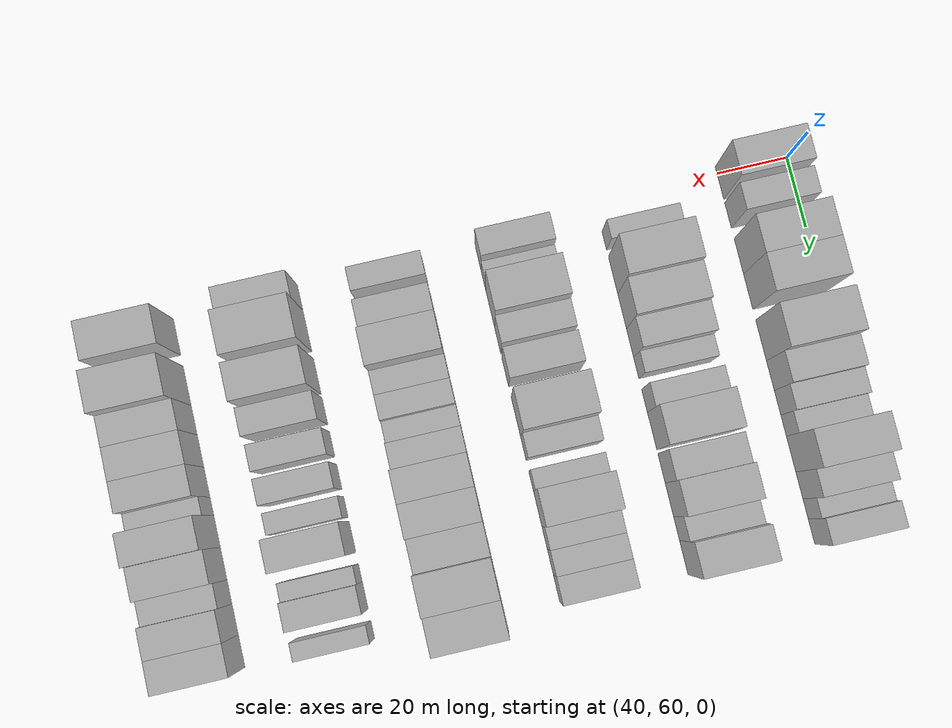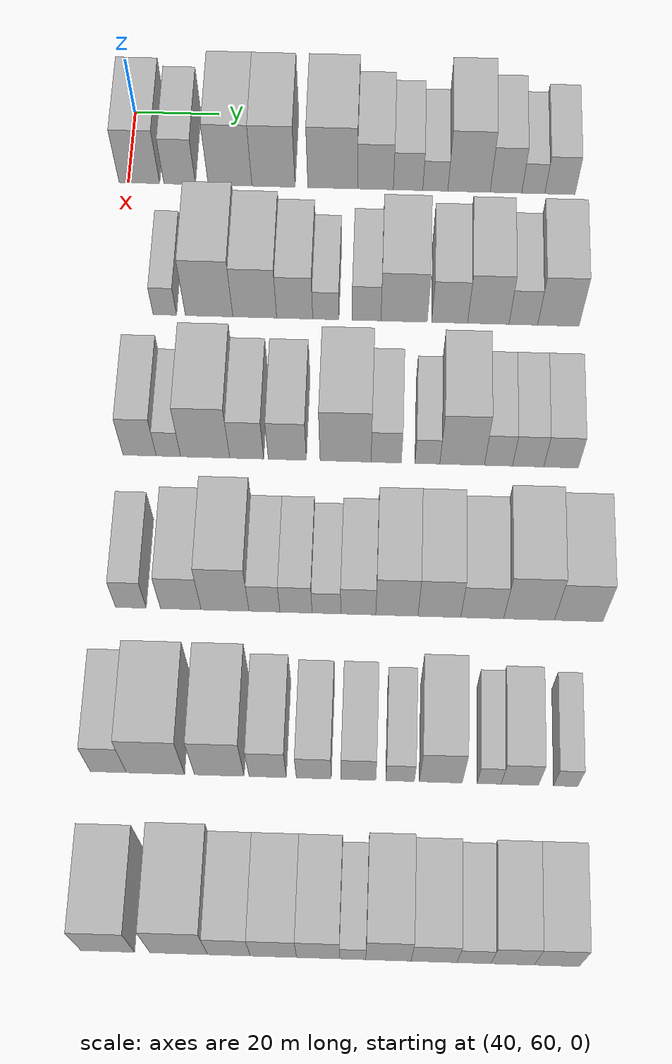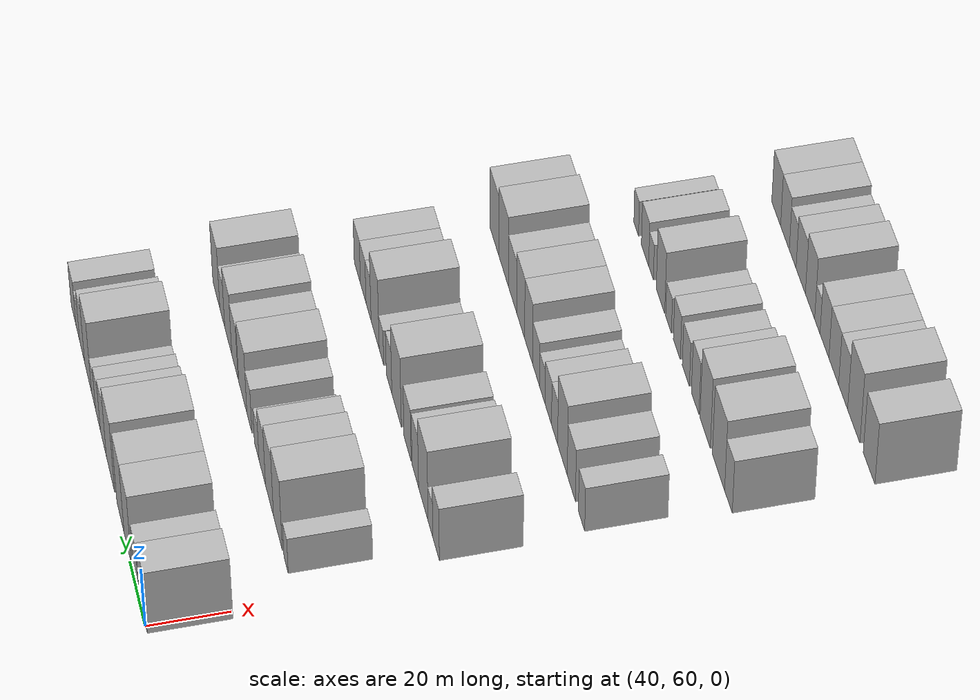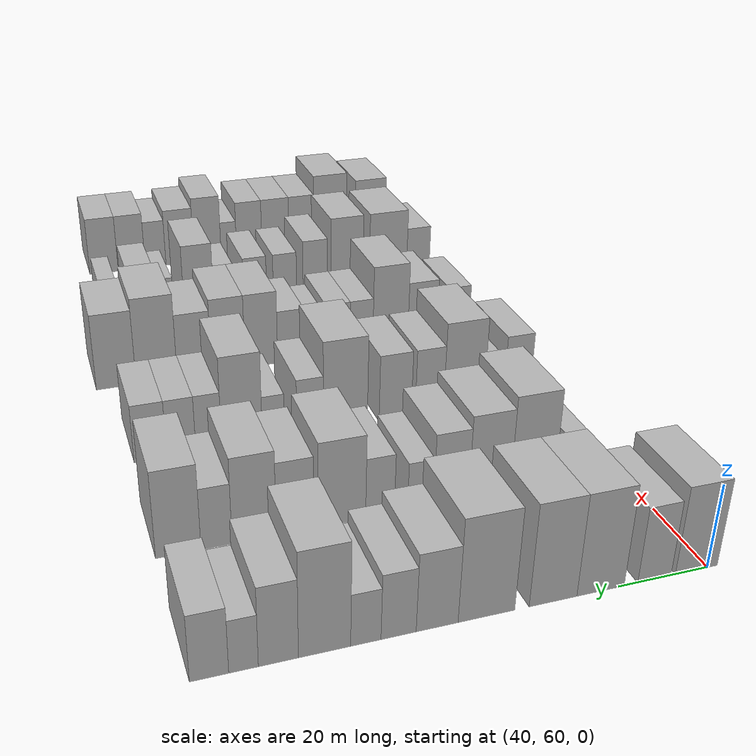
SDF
<sdf version="1.6">
 <world name="default">
  <model name="building_65">
   <static>1</static>
   <pose>50.0000 62.5871 0 0.000000 0.000000 0.000000</pose>
   <link name="link">
    <pose>0 0 10.50 0 0 0</pose>
    <collision name="collision"><geometry><box><size>20.0000 9.5346 21.0000</size></box></geometry></collision>
    <visual name="visual">
     <cast_shadows>0</cast_shadows>
     <geometry><box><size>20.0000 9.5346 21.0000</size></box></geometry>
     <material>
      <script>
       <uri>model://HANNAS_wall/materials/scripts</uri>
       <uri>model://HANNAS_wall/materials/textures</uri>
       <name>vrc/HANNAS_wall</name>
      </script>
     </material>
    </visual>
   </link>
  </model>
  <model name="building_66">
   <static>1</static>
   <pose>50.0000 72.0504 0 0.000000 0.000000 0.000000</pose>
   <link name="link">
    <pose>0 0 9.00 0 0 0</pose>
    <collision name="collision"><geometry><box><size>20.0000 7.3921 18.0000</size></box></geometry></collision>
    <visual name="visual">
     <cast_shadows>0</cast_shadows>
     <geometry><box><size>20.0000 7.3921 18.0000</size></box></geometry>
     <material>
      <script>
       <uri>model://HANNAS_wall/materials/scripts</uri>
       <uri>model://HANNAS_wall/materials/textures</uri>
       <name>vrc/HANNAS_wall</name>
      </script>
     </material>
    </visual>
   </link>
  </model>
  <model name="building_67">
   <static>1</static>
   <pose>50.0000 83.8747 0 0.000000 0.000000 0.000000</pose>
   <link name="link">
    <pose>0 0 12.00 0 0 0</pose>
    <collision name="collision"><geometry><box><size>20.0000 10.2564 24.0000</size></box></geometry></collision>
    <visual name="visual">
     <cast_shadows>0</cast_shadows>
     <geometry><box><size>20.0000 10.2564 24.0000</size></box></geometry>
     <material>
      <script>
       <uri>model://HANNAS_wall/materials/scripts</uri>
       <uri>model://HANNAS_wall/materials/textures</uri>
       <name>vrc/HANNAS_wall</name>
      </script>
     </material>
    </visual>
   </link>
  </model>
  <model name="building_68">
   <static>1</static>
   <pose>50.0000 94.0587 0 0.000000 0.000000 0.000000</pose>
   <link name="link">
    <pose>0 0 12.00 0 0 0</pose>
    <collision name="collision"><geometry><box><size>20.0000 10.1116 24.0000</size></box></geometry></collision>
    <visual name="visual">
     <cast_shadows>0</cast_shadows>
     <geometry><box><size>20.0000 10.1116 24.0000</size></box></geometry>
     <material>
      <script>
       <uri>model://HANNAS_wall/materials/scripts</uri>
       <uri>model://HANNAS_wall/materials/textures</uri>
       <name>vrc/HANNAS_wall</name>
      </script>
     </material>
    </visual>
   </link>
  </model>
  <model name="building_69">
   <static>1</static>
   <pose>50.0000 107.9157 0 0.000000 0.000000 0.000000</pose>
   <link name="link">
    <pose>0 0 12.00 0 0 0</pose>
    <collision name="collision"><geometry><box><size>20.0000 11.6024 24.0000</size></box></geometry></collision>
    <visual name="visual">
     <cast_shadows>0</cast_shadows>
     <geometry><box><size>20.0000 11.6024 24.0000</size></box></geometry>
     <material>
      <script>
       <uri>model://HANNAS_wall/materials/scripts</uri>
       <uri>model://HANNAS_wall/materials/textures</uri>
       <name>vrc/HANNAS_wall</name>
      </script>
     </material>
    </visual>
   </link>
  </model>
  <model name="building_70">
   <static>1</static>
   <pose>50.0000 117.9040 0 0.000000 0.000000 0.000000</pose>
   <link name="link">
    <pose>0 0 9.00 0 0 0</pose>
    <collision name="collision"><geometry><box><size>20.0000 8.3743 18.0000</size></box></geometry></collision>
    <visual name="visual">
     <cast_shadows>0</cast_shadows>
     <geometry><box><size>20.0000 8.3743 18.0000</size></box></geometry>
     <material>
      <script>
       <uri>model://HANNAS_wall/materials/scripts</uri>
       <uri>model://HANNAS_wall/materials/textures</uri>
       <name>vrc/HANNAS_wall</name>
      </script>
     </material>
    </visual>
   </link>
  </model>
  <model name="building_71">
   <static>1</static>
   <pose>50.0000 125.5393 0 0.000000 0.000000 0.000000</pose>
   <link name="link">
    <pose>0 0 7.50 0 0 0</pose>
    <collision name="collision"><geometry><box><size>20.0000 6.8961 15.0000</size></box></geometry></collision>
    <visual name="visual">
     <cast_shadows>0</cast_shadows>
     <geometry><box><size>20.0000 6.8961 15.0000</size></box></geometry>
     <material>
      <script>
       <uri>model://HANNAS_wall/materials/scripts</uri>
       <uri>model://HANNAS_wall/materials/textures</uri>
       <name>vrc/HANNAS_wall</name>
      </script>
     </material>
    </visual>
   </link>
  </model>
  <model name="building_72">
   <static>1</static>
   <pose>50.0000 131.9110 0 0.000000 0.000000 0.000000</pose>
   <link name="link">
    <pose>0 0 6.00 0 0 0</pose>
    <collision name="collision"><geometry><box><size>20.0000 5.8474 12.0000</size></box></geometry></collision>
    <visual name="visual">
     <cast_shadows>0</cast_shadows>
     <geometry><box><size>20.0000 5.8474 12.0000</size></box></geometry>
     <material>
      <script>
       <uri>model://HANNAS_wall/materials/scripts</uri>
       <uri>model://HANNAS_wall/materials/textures</uri>
       <name>vrc/HANNAS_wall</name>
      </script>
     </material>
    </visual>
   </link>
  </model>
  <model name="building_73">
   <static>1</static>
   <pose>50.0000 139.7743 0 0.000000 0.000000 0.000000</pose>
   <link name="link">
    <pose>0 0 12.00 0 0 0</pose>
    <collision name="collision"><geometry><box><size>20.0000 9.8790 24.0000</size></box></geometry></collision>
    <visual name="visual">
     <cast_shadows>0</cast_shadows>
     <geometry><box><size>20.0000 9.8790 24.0000</size></box></geometry>
     <material>
      <script>
       <uri>model://HANNAS_wall/materials/scripts</uri>
       <uri>model://HANNAS_wall/materials/textures</uri>
       <name>vrc/HANNAS_wall</name>
      </script>
     </material>
    </visual>
   </link>
  </model>
  <model name="building_74">
   <static>1</static>
   <pose>50.0000 148.4170 0 0.000000 0.000000 0.000000</pose>
   <link name="link">
    <pose>0 0 9.00 0 0 0</pose>
    <collision name="collision"><geometry><box><size>20.0000 7.4064 18.0000</size></box></geometry></collision>
    <visual name="visual">
     <cast_shadows>0</cast_shadows>
     <geometry><box><size>20.0000 7.4064 18.0000</size></box></geometry>
     <material>
      <script>
       <uri>model://HANNAS_wall/materials/scripts</uri>
       <uri>model://HANNAS_wall/materials/textures</uri>
       <name>vrc/HANNAS_wall</name>
      </script>
     </material>
    </visual>
   </link>
  </model>
  <model name="building_75">
   <static>1</static>
   <pose>50.0000 154.8145 0 0.000000 0.000000 0.000000</pose>
   <link name="link">
    <pose>0 0 6.00 0 0 0</pose>
    <collision name="collision"><geometry><box><size>20.0000 5.3887 12.0000</size></box></geometry></collision>
    <visual name="visual">
     <cast_shadows>0</cast_shadows>
     <geometry><box><size>20.0000 5.3887 12.0000</size></box></geometry>
     <material>
      <script>
       <uri>model://HANNAS_wall/materials/scripts</uri>
       <uri>model://HANNAS_wall/materials/textures</uri>
       <name>vrc/HANNAS_wall</name>
      </script>
     </material>
    </visual>
   </link>
  </model>
  <model name="building_76">
   <static>1</static>
   <pose>50.0000 161.0354 0 0.000000 0.000000 0.000000</pose>
   <link name="link">
    <pose>0 0 7.50 0 0 0</pose>
    <collision name="collision"><geometry><box><size>20.0000 7.0530 15.0000</size></box></geometry></collision>
    <visual name="visual">
     <cast_shadows>0</cast_shadows>
     <geometry><box><size>20.0000 7.0530 15.0000</size></box></geometry>
     <material>
      <script>
       <uri>model://HANNAS_wall/materials/scripts</uri>
       <uri>model://HANNAS_wall/materials/textures</uri>
       <name>vrc/HANNAS_wall</name>
      </script>
     </material>
    </visual>
   </link>
  </model>
  <model name="building_193">
   <static>1</static>
   <pose>85.0000 71.1842 0 0.000000 0.000000 0.000000</pose>
   <link name="link">
    <pose>0 0 6.00 0 0 0</pose>
    <collision name="collision"><geometry><box><size>20.0000 5.3014 12.0000</size></box></geometry></collision>
    <visual name="visual">
     <cast_shadows>0</cast_shadows>
     <geometry><box><size>20.0000 5.3014 12.0000</size></box></geometry>
     <material>
      <script>
       <uri>model://HANNAS_wall/materials/scripts</uri>
       <uri>model://HANNAS_wall/materials/textures</uri>
       <name>vrc/HANNAS_wall</name>
      </script>
     </material>
    </visual>
   </link>
  </model>
  <model name="building_194">
   <static>1</static>
   <pose>85.0000 81.2009 0 0.000000 0.000000 0.000000</pose>
   <link name="link">
    <pose>0 0 12.00 0 0 0</pose>
    <collision name="collision"><geometry><box><size>20.0000 10.7320 24.0000</size></box></geometry></collision>
    <visual name="visual">
     <cast_shadows>0</cast_shadows>
     <geometry><box><size>20.0000 10.7320 24.0000</size></box></geometry>
     <material>
      <script>
       <uri>model://HANNAS_wall/materials/scripts</uri>
       <uri>model://HANNAS_wall/materials/textures</uri>
       <name>vrc/HANNAS_wall</name>
      </script>
     </material>
    </visual>
   </link>
  </model>
  <model name="building_195">
   <static>1</static>
   <pose>85.0000 91.5260 0 0.000000 0.000000 0.000000</pose>
   <link name="link">
    <pose>0 0 10.50 0 0 0</pose>
    <collision name="collision"><geometry><box><size>20.0000 9.9181 21.0000</size></box></geometry></collision>
    <visual name="visual">
     <cast_shadows>0</cast_shadows>
     <geometry><box><size>20.0000 9.9181 21.0000</size></box></geometry>
     <material>
      <script>
       <uri>model://HANNAS_wall/materials/scripts</uri>
       <uri>model://HANNAS_wall/materials/textures</uri>
       <name>vrc/HANNAS_wall</name>
      </script>
     </material>
    </visual>
   </link>
  </model>
  <model name="building_196">
   <static>1</static>
   <pose>85.0000 100.5486 0 0.000000 0.000000 0.000000</pose>
   <link name="link">
    <pose>0 0 9.00 0 0 0</pose>
    <collision name="collision"><geometry><box><size>20.0000 8.1271 18.0000</size></box></geometry></collision>
    <visual name="visual">
     <cast_shadows>0</cast_shadows>
     <geometry><box><size>20.0000 8.1271 18.0000</size></box></geometry>
     <material>
      <script>
       <uri>model://HANNAS_wall/materials/scripts</uri>
       <uri>model://HANNAS_wall/materials/textures</uri>
       <name>vrc/HANNAS_wall</name>
      </script>
     </material>
    </visual>
   </link>
  </model>
  <model name="building_197">
   <static>1</static>
   <pose>85.0000 107.5792 0 0.000000 0.000000 0.000000</pose>
   <link name="link">
    <pose>0 0 6.00 0 0 0</pose>
    <collision name="collision"><geometry><box><size>20.0000 5.9340 12.0000</size></box></geometry></collision>
    <visual name="visual">
     <cast_shadows>0</cast_shadows>
     <geometry><box><size>20.0000 5.9340 12.0000</size></box></geometry>
     <material>
      <script>
       <uri>model://HANNAS_wall/materials/scripts</uri>
       <uri>model://HANNAS_wall/materials/textures</uri>
       <name>vrc/HANNAS_wall</name>
      </script>
     </material>
    </visual>
   </link>
  </model>
  <model name="building_198">
   <static>1</static>
   <pose>85.0000 116.7758 0 0.000000 0.000000 0.000000</pose>
   <link name="link">
    <pose>0 0 7.50 0 0 0</pose>
    <collision name="collision"><geometry><box><size>20.0000 6.4592 15.0000</size></box></geometry></collision>
    <visual name="visual">
     <cast_shadows>0</cast_shadows>
     <geometry><box><size>20.0000 6.4592 15.0000</size></box></geometry>
     <material>
      <script>
       <uri>model://HANNAS_wall/materials/scripts</uri>
       <uri>model://HANNAS_wall/materials/textures</uri>
       <name>vrc/HANNAS_wall</name>
      </script>
     </material>
    </visual>
   </link>
  </model>
  <model name="building_199">
   <static>1</static>
   <pose>85.0000 125.2297 0 0.000000 0.000000 0.000000</pose>
   <link name="link">
    <pose>0 0 10.50 0 0 0</pose>
    <collision name="collision"><geometry><box><size>20.0000 10.4485 21.0000</size></box></geometry></collision>
    <visual name="visual">
     <cast_shadows>0</cast_shadows>
     <geometry><box><size>20.0000 10.4485 21.0000</size></box></geometry>
     <material>
      <script>
       <uri>model://HANNAS_wall/materials/scripts</uri>
       <uri>model://HANNAS_wall/materials/textures</uri>
       <name>vrc/HANNAS_wall</name>
      </script>
     </material>
    </visual>
   </link>
  </model>
  <model name="building_200">
   <static>1</static>
   <pose>85.0000 135.4987 0 0.000000 0.000000 0.000000</pose>
   <link name="link">
    <pose>0 0 9.00 0 0 0</pose>
    <collision name="collision"><geometry><box><size>20.0000 8.0895 18.0000</size></box></geometry></collision>
    <visual name="visual">
     <cast_shadows>0</cast_shadows>
     <geometry><box><size>20.0000 8.0895 18.0000</size></box></geometry>
     <material>
      <script>
       <uri>model://HANNAS_wall/materials/scripts</uri>
       <uri>model://HANNAS_wall/materials/textures</uri>
       <name>vrc/HANNAS_wall</name>
      </script>
     </material>
    </visual>
   </link>
  </model>
  <model name="building_201">
   <static>1</static>
   <pose>85.0000 144.2109 0 0.000000 0.000000 0.000000</pose>
   <link name="link">
    <pose>0 0 10.50 0 0 0</pose>
    <collision name="collision"><geometry><box><size>20.0000 9.3350 21.0000</size></box></geometry></collision>
    <visual name="visual">
     <cast_shadows>0</cast_shadows>
     <geometry><box><size>20.0000 9.3350 21.0000</size></box></geometry>
     <material>
      <script>
       <uri>model://HANNAS_wall/materials/scripts</uri>
       <uri>model://HANNAS_wall/materials/textures</uri>
       <name>vrc/HANNAS_wall</name>
      </script>
     </material>
    </visual>
   </link>
  </model>
  <model name="building_202">
   <static>1</static>
   <pose>85.0000 152.1112 0 0.000000 0.000000 0.000000</pose>
   <link name="link">
    <pose>0 0 7.50 0 0 0</pose>
    <collision name="collision"><geometry><box><size>20.0000 6.4655 15.0000</size></box></geometry></collision>
    <visual name="visual">
     <cast_shadows>0</cast_shadows>
     <geometry><box><size>20.0000 6.4655 15.0000</size></box></geometry>
     <material>
      <script>
       <uri>model://HANNAS_wall/materials/scripts</uri>
       <uri>model://HANNAS_wall/materials/textures</uri>
       <name>vrc/HANNAS_wall</name>
      </script>
     </material>
    </visual>
   </link>
  </model>
  <model name="building_203">
   <static>1</static>
   <pose>85.0000 159.9996 0 0.000000 0.000000 0.000000</pose>
   <link name="link">
    <pose>0 0 10.50 0 0 0</pose>
    <collision name="collision"><geometry><box><size>20.0000 9.3115 21.0000</size></box></geometry></collision>
    <visual name="visual">
     <cast_shadows>0</cast_shadows>
     <geometry><box><size>20.0000 9.3115 21.0000</size></box></geometry>
     <material>
      <script>
       <uri>model://HANNAS_wall/materials/scripts</uri>
       <uri>model://HANNAS_wall/materials/textures</uri>
       <name>vrc/HANNAS_wall</name>
      </script>
     </material>
    </visual>
   </link>
  </model>
  <model name="building_320">
   <static>1</static>
   <pose>120.0000 68.3104 0 0.000000 0.000000 0.000000</pose>
   <link name="link">
    <pose>0 0 9.00 0 0 0</pose>
    <collision name="collision"><geometry><box><size>20.0000 7.2214 18.0000</size></box></geometry></collision>
    <visual name="visual">
     <cast_shadows>0</cast_shadows>
     <geometry><box><size>20.0000 7.2214 18.0000</size></box></geometry>
     <material>
      <script>
       <uri>model://HANNAS_wall/materials/scripts</uri>
       <uri>model://HANNAS_wall/materials/textures</uri>
       <name>vrc/HANNAS_wall</name>
      </script>
     </material>
    </visual>
   </link>
  </model>
  <model name="building_321">
   <static>1</static>
   <pose>120.0000 74.5831 0 0.000000 0.000000 0.000000</pose>
   <link name="link">
    <pose>0 0 6.00 0 0 0</pose>
    <collision name="collision"><geometry><box><size>20.0000 5.3240 12.0000</size></box></geometry></collision>
    <visual name="visual">
     <cast_shadows>0</cast_shadows>
     <geometry><box><size>20.0000 5.3240 12.0000</size></box></geometry>
     <material>
      <script>
       <uri>model://HANNAS_wall/materials/scripts</uri>
       <uri>model://HANNAS_wall/materials/textures</uri>
       <name>vrc/HANNAS_wall</name>
      </script>
     </material>
    </visual>
   </link>
  </model>
  <model name="building_322">
   <static>1</static>
   <pose>120.0000 82.5969 0 0.000000 0.000000 0.000000</pose>
   <link name="link">
    <pose>0 0 12.00 0 0 0</pose>
    <collision name="collision"><geometry><box><size>20.0000 10.7036 24.0000</size></box></geometry></collision>
    <visual name="visual">
     <cast_shadows>0</cast_shadows>
     <geometry><box><size>20.0000 10.7036 24.0000</size></box></geometry>
     <material>
      <script>
       <uri>model://HANNAS_wall/materials/scripts</uri>
       <uri>model://HANNAS_wall/materials/textures</uri>
       <name>vrc/HANNAS_wall</name>
      </script>
     </material>
    </visual>
   </link>
  </model>
  <model name="building_323">
   <static>1</static>
   <pose>120.0000 91.6506 0 0.000000 0.000000 0.000000</pose>
   <link name="link">
    <pose>0 0 9.00 0 0 0</pose>
    <collision name="collision"><geometry><box><size>20.0000 7.4039 18.0000</size></box></geometry></collision>
    <visual name="visual">
     <cast_shadows>0</cast_shadows>
     <geometry><box><size>20.0000 7.4039 18.0000</size></box></geometry>
     <material>
      <script>
       <uri>model://HANNAS_wall/materials/scripts</uri>
       <uri>model://HANNAS_wall/materials/textures</uri>
       <name>vrc/HANNAS_wall</name>
      </script>
     </material>
    </visual>
   </link>
  </model>
  <model name="building_324">
   <static>1</static>
   <pose>120.0000 100.4867 0 0.000000 0.000000 0.000000</pose>
   <link name="link">
    <pose>0 0 9.00 0 0 0</pose>
    <collision name="collision"><geometry><box><size>20.0000 8.2682 18.0000</size></box></geometry></collision>
    <visual name="visual">
     <cast_shadows>0</cast_shadows>
     <geometry><box><size>20.0000 8.2682 18.0000</size></box></geometry>
     <material>
      <script>
       <uri>model://HANNAS_wall/materials/scripts</uri>
       <uri>model://HANNAS_wall/materials/textures</uri>
       <name>vrc/HANNAS_wall</name>
      </script>
     </material>
    </visual>
   </link>
  </model>
  <model name="building_325">
   <static>1</static>
   <pose>120.0000 113.1542 0 0.000000 0.000000 0.000000</pose>
   <link name="link">
    <pose>0 0 12.00 0 0 0</pose>
    <collision name="collision"><geometry><box><size>20.0000 11.0669 24.0000</size></box></geometry></collision>
    <visual name="visual">
     <cast_shadows>0</cast_shadows>
     <geometry><box><size>20.0000 11.0669 24.0000</size></box></geometry>
     <material>
      <script>
       <uri>model://HANNAS_wall/materials/scripts</uri>
       <uri>model://HANNAS_wall/materials/textures</uri>
       <name>vrc/HANNAS_wall</name>
      </script>
     </material>
    </visual>
   </link>
  </model>
  <model name="building_326">
   <static>1</static>
   <pose>120.0000 121.9615 0 0.000000 0.000000 0.000000</pose>
   <link name="link">
    <pose>0 0 7.50 0 0 0</pose>
    <collision name="collision"><geometry><box><size>20.0000 6.5477 15.0000</size></box></geometry></collision>
    <visual name="visual">
     <cast_shadows>0</cast_shadows>
     <geometry><box><size>20.0000 6.5477 15.0000</size></box></geometry>
     <material>
      <script>
       <uri>model://HANNAS_wall/materials/scripts</uri>
       <uri>model://HANNAS_wall/materials/textures</uri>
       <name>vrc/HANNAS_wall</name>
      </script>
     </material>
    </visual>
   </link>
  </model>
  <model name="building_327">
   <static>1</static>
   <pose>120.0000 130.9257 0 0.000000 0.000000 0.000000</pose>
   <link name="link">
    <pose>0 0 6.00 0 0 0</pose>
    <collision name="collision"><geometry><box><size>20.0000 5.3807 12.0000</size></box></geometry></collision>
    <visual name="visual">
     <cast_shadows>0</cast_shadows>
     <geometry><box><size>20.0000 5.3807 12.0000</size></box></geometry>
     <material>
      <script>
       <uri>model://HANNAS_wall/materials/scripts</uri>
       <uri>model://HANNAS_wall/materials/textures</uri>
       <name>vrc/HANNAS_wall</name>
      </script>
     </material>
    </visual>
   </link>
  </model>
  <model name="building_328">
   <static>1</static>
   <pose>120.0000 138.4639 0 0.000000 0.000000 0.000000</pose>
   <link name="link">
    <pose>0 0 12.00 0 0 0</pose>
    <collision name="collision"><geometry><box><size>20.0000 9.6957 24.0000</size></box></geometry></collision>
    <visual name="visual">
     <cast_shadows>0</cast_shadows>
     <geometry><box><size>20.0000 9.6957 24.0000</size></box></geometry>
     <material>
      <script>
       <uri>model://HANNAS_wall/materials/scripts</uri>
       <uri>model://HANNAS_wall/materials/textures</uri>
       <name>vrc/HANNAS_wall</name>
      </script>
     </material>
    </visual>
   </link>
  </model>
  <model name="building_329">
   <static>1</static>
   <pose>120.0000 146.3596 0 0.000000 0.000000 0.000000</pose>
   <link name="link">
    <pose>0 0 7.50 0 0 0</pose>
    <collision name="collision"><geometry><box><size>20.0000 6.0956 15.0000</size></box></geometry></collision>
    <visual name="visual">
     <cast_shadows>0</cast_shadows>
     <geometry><box><size>20.0000 6.0956 15.0000</size></box></geometry>
     <material>
      <script>
       <uri>model://HANNAS_wall/materials/scripts</uri>
       <uri>model://HANNAS_wall/materials/textures</uri>
       <name>vrc/HANNAS_wall</name>
      </script>
     </material>
    </visual>
   </link>
  </model>
  <model name="building_330">
   <static>1</static>
   <pose>120.0000 152.8057 0 0.000000 0.000000 0.000000</pose>
   <link name="link">
    <pose>0 0 7.50 0 0 0</pose>
    <collision name="collision"><geometry><box><size>20.0000 6.7966 15.0000</size></box></geometry></collision>
    <visual name="visual">
     <cast_shadows>0</cast_shadows>
     <geometry><box><size>20.0000 6.7966 15.0000</size></box></geometry>
     <material>
      <script>
       <uri>model://HANNAS_wall/materials/scripts</uri>
       <uri>model://HANNAS_wall/materials/textures</uri>
       <name>vrc/HANNAS_wall</name>
      </script>
     </material>
    </visual>
   </link>
  </model>
  <model name="building_331">
   <static>1</static>
   <pose>120.0000 159.9426 0 0.000000 0.000000 0.000000</pose>
   <link name="link">
    <pose>0 0 7.50 0 0 0</pose>
    <collision name="collision"><geometry><box><size>20.0000 7.4772 15.0000</size></box></geometry></collision>
    <visual name="visual">
     <cast_shadows>0</cast_shadows>
     <geometry><box><size>20.0000 7.4772 15.0000</size></box></geometry>
     <material>
      <script>
       <uri>model://HANNAS_wall/materials/scripts</uri>
       <uri>model://HANNAS_wall/materials/textures</uri>
       <name>vrc/HANNAS_wall</name>
      </script>
     </material>
    </visual>
   </link>
  </model>
  <model name="building_448">
   <static>1</static>
   <pose>155.0000 69.3031 0 0.000000 0.000000 0.000000</pose>
   <link name="link">
    <pose>0 0 7.50 0 0 0</pose>
    <collision name="collision"><geometry><box><size>20.0000 6.4344 15.0000</size></box></geometry></collision>
    <visual name="visual">
     <cast_shadows>0</cast_shadows>
     <geometry><box><size>20.0000 6.4344 15.0000</size></box></geometry>
     <material>
      <script>
       <uri>model://HANNAS_wall/materials/scripts</uri>
       <uri>model://HANNAS_wall/materials/textures</uri>
       <name>vrc/HANNAS_wall</name>
      </script>
     </material>
    </visual>
   </link>
  </model>
  <model name="building_449">
   <static>1</static>
   <pose>155.0000 79.7739 0 0.000000 0.000000 0.000000</pose>
   <link name="link">
    <pose>0 0 9.00 0 0 0</pose>
    <collision name="collision"><geometry><box><size>20.0000 8.5072 18.0000</size></box></geometry></collision>
    <visual name="visual">
     <cast_shadows>0</cast_shadows>
     <geometry><box><size>20.0000 8.5072 18.0000</size></box></geometry>
     <material>
      <script>
       <uri>model://HANNAS_wall/materials/scripts</uri>
       <uri>model://HANNAS_wall/materials/textures</uri>
       <name>vrc/HANNAS_wall</name>
      </script>
     </material>
    </visual>
   </link>
  </model>
  <model name="building_450">
   <static>1</static>
   <pose>155.0000 89.0446 0 0.000000 0.000000 0.000000</pose>
   <link name="link">
    <pose>0 0 12.00 0 0 0</pose>
    <collision name="collision"><geometry><box><size>20.0000 10.0342 24.0000</size></box></geometry></collision>
    <visual name="visual">
     <cast_shadows>0</cast_shadows>
     <geometry><box><size>20.0000 10.0342 24.0000</size></box></geometry>
     <material>
      <script>
       <uri>model://HANNAS_wall/materials/scripts</uri>
       <uri>model://HANNAS_wall/materials/textures</uri>
       <name>vrc/HANNAS_wall</name>
      </script>
     </material>
    </visual>
   </link>
  </model>
  <model name="building_451">
   <static>1</static>
   <pose>155.0000 97.2933 0 0.000000 0.000000 0.000000</pose>
   <link name="link">
    <pose>0 0 7.50 0 0 0</pose>
    <collision name="collision"><geometry><box><size>20.0000 6.4631 15.0000</size></box></geometry></collision>
    <visual name="visual">
     <cast_shadows>0</cast_shadows>
     <geometry><box><size>20.0000 6.4631 15.0000</size></box></geometry>
     <material>
      <script>
       <uri>model://HANNAS_wall/materials/scripts</uri>
       <uri>model://HANNAS_wall/materials/textures</uri>
       <name>vrc/HANNAS_wall</name>
      </script>
     </material>
    </visual>
   </link>
  </model>
  <model name="building_452">
   <static>1</static>
   <pose>155.0000 103.8926 0 0.000000 0.000000 0.000000</pose>
   <link name="link">
    <pose>0 0 7.50 0 0 0</pose>
    <collision name="collision"><geometry><box><size>20.0000 6.7355 15.0000</size></box></geometry></collision>
    <visual name="visual">
     <cast_shadows>0</cast_shadows>
     <geometry><box><size>20.0000 6.7355 15.0000</size></box></geometry>
     <material>
      <script>
       <uri>model://HANNAS_wall/materials/scripts</uri>
       <uri>model://HANNAS_wall/materials/textures</uri>
       <name>vrc/HANNAS_wall</name>
      </script>
     </material>
    </visual>
   </link>
  </model>
  <model name="building_453">
   <static>1</static>
   <pose>155.0000 110.2554 0 0.000000 0.000000 0.000000</pose>
   <link name="link">
    <pose>0 0 6.00 0 0 0</pose>
    <collision name="collision"><geometry><box><size>20.0000 5.9901 12.0000</size></box></geometry></collision>
    <visual name="visual">
     <cast_shadows>0</cast_shadows>
     <geometry><box><size>20.0000 5.9901 12.0000</size></box></geometry>
     <material>
      <script>
       <uri>model://HANNAS_wall/materials/scripts</uri>
       <uri>model://HANNAS_wall/materials/textures</uri>
       <name>vrc/HANNAS_wall</name>
      </script>
     </material>
    </visual>
   </link>
  </model>
  <model name="building_454">
   <static>1</static>
   <pose>155.0000 116.9087 0 0.000000 0.000000 0.000000</pose>
   <link name="link">
    <pose>0 0 7.50 0 0 0</pose>
    <collision name="collision"><geometry><box><size>20.0000 7.3164 15.0000</size></box></geometry></collision>
    <visual name="visual">
     <cast_shadows>0</cast_shadows>
     <geometry><box><size>20.0000 7.3164 15.0000</size></box></geometry>
     <material>
      <script>
       <uri>model://HANNAS_wall/materials/scripts</uri>
       <uri>model://HANNAS_wall/materials/textures</uri>
       <name>vrc/HANNAS_wall</name>
      </script>
     </material>
    </visual>
   </link>
  </model>
  <model name="building_455">
   <static>1</static>
   <pose>155.0000 124.9726 0 0.000000 0.000000 0.000000</pose>
   <link name="link">
    <pose>0 0 10.50 0 0 0</pose>
    <collision name="collision"><geometry><box><size>20.0000 8.8115 21.0000</size></box></geometry></collision>
    <visual name="visual">
     <cast_shadows>0</cast_shadows>
     <geometry><box><size>20.0000 8.8115 21.0000</size></box></geometry>
     <material>
      <script>
       <uri>model://HANNAS_wall/materials/scripts</uri>
       <uri>model://HANNAS_wall/materials/textures</uri>
       <name>vrc/HANNAS_wall</name>
      </script>
     </material>
    </visual>
   </link>
  </model>
  <model name="building_456">
   <static>1</static>
   <pose>155.0000 133.8455 0 0.000000 0.000000 0.000000</pose>
   <link name="link">
    <pose>0 0 10.50 0 0 0</pose>
    <collision name="collision"><geometry><box><size>20.0000 8.9343 21.0000</size></box></geometry></collision>
    <visual name="visual">
     <cast_shadows>0</cast_shadows>
     <geometry><box><size>20.0000 8.9343 21.0000</size></box></geometry>
     <material>
      <script>
       <uri>model://HANNAS_wall/materials/scripts</uri>
       <uri>model://HANNAS_wall/materials/textures</uri>
       <name>vrc/HANNAS_wall</name>
      </script>
     </material>
    </visual>
   </link>
  </model>
  <model name="building_457">
   <static>1</static>
   <pose>155.0000 142.8031 0 0.000000 0.000000 0.000000</pose>
   <link name="link">
    <pose>0 0 9.00 0 0 0</pose>
    <collision name="collision"><geometry><box><size>20.0000 8.9809 18.0000</size></box></geometry></collision>
    <visual name="visual">
     <cast_shadows>0</cast_shadows>
     <geometry><box><size>20.0000 8.9809 18.0000</size></box></geometry>
     <material>
      <script>
       <uri>model://HANNAS_wall/materials/scripts</uri>
       <uri>model://HANNAS_wall/materials/textures</uri>
       <name>vrc/HANNAS_wall</name>
      </script>
     </material>
    </visual>
   </link>
  </model>
  <model name="building_458">
   <static>1</static>
   <pose>155.0000 152.5817 0 0.000000 0.000000 0.000000</pose>
   <link name="link">
    <pose>0 0 12.00 0 0 0</pose>
    <collision name="collision"><geometry><box><size>20.0000 10.5763 24.0000</size></box></geometry></collision>
    <visual name="visual">
     <cast_shadows>0</cast_shadows>
     <geometry><box><size>20.0000 10.5763 24.0000</size></box></geometry>
     <material>
      <script>
       <uri>model://HANNAS_wall/materials/scripts</uri>
       <uri>model://HANNAS_wall/materials/textures</uri>
       <name>vrc/HANNAS_wall</name>
      </script>
     </material>
    </visual>
   </link>
  </model>
  <model name="building_459">
   <static>1</static>
   <pose>155.0000 162.9199 0 0.000000 0.000000 0.000000</pose>
   <link name="link">
    <pose>0 0 10.50 0 0 0</pose>
    <collision name="collision"><geometry><box><size>20.0000 10.0999 21.0000</size></box></geometry></collision>
    <visual name="visual">
     <cast_shadows>0</cast_shadows>
     <geometry><box><size>20.0000 10.0999 21.0000</size></box></geometry>
     <material>
      <script>
       <uri>model://HANNAS_wall/materials/scripts</uri>
       <uri>model://HANNAS_wall/materials/textures</uri>
       <name>vrc/HANNAS_wall</name>
      </script>
     </material>
    </visual>
   </link>
  </model>
  <model name="building_575">
   <static>1</static>
   <pose>190.0000 67.6637 0 0.000000 0.000000 0.000000</pose>
   <link name="link">
    <pose>0 0 9.00 0 0 0</pose>
    <collision name="collision"><geometry><box><size>20.0000 7.2488 18.0000</size></box></geometry></collision>
    <visual name="visual">
     <cast_shadows>0</cast_shadows>
     <geometry><box><size>20.0000 7.2488 18.0000</size></box></geometry>
     <material>
      <script>
       <uri>model://HANNAS_wall/materials/scripts</uri>
       <uri>model://HANNAS_wall/materials/textures</uri>
       <name>vrc/HANNAS_wall</name>
      </script>
     </material>
    </visual>
   </link>
  </model>
  <model name="building_576">
   <static>1</static>
   <pose>190.0000 77.1559 0 0.000000 0.000000 0.000000</pose>
   <link name="link">
    <pose>0 0 12.00 0 0 0</pose>
    <collision name="collision"><geometry><box><size>20.0000 11.7356 24.0000</size></box></geometry></collision>
    <visual name="visual">
     <cast_shadows>0</cast_shadows>
     <geometry><box><size>20.0000 11.7356 24.0000</size></box></geometry>
     <material>
      <script>
       <uri>model://HANNAS_wall/materials/scripts</uri>
       <uri>model://HANNAS_wall/materials/textures</uri>
       <name>vrc/HANNAS_wall</name>
      </script>
     </material>
    </visual>
   </link>
  </model>
  <model name="building_577">
   <static>1</static>
   <pose>190.0000 90.0188 0 0.000000 0.000000 0.000000</pose>
   <link name="link">
    <pose>0 0 12.00 0 0 0</pose>
    <collision name="collision"><geometry><box><size>20.0000 9.9901 24.0000</size></box></geometry></collision>
    <visual name="visual">
     <cast_shadows>0</cast_shadows>
     <geometry><box><size>20.0000 9.9901 24.0000</size></box></geometry>
     <material>
      <script>
       <uri>model://HANNAS_wall/materials/scripts</uri>
       <uri>model://HANNAS_wall/materials/textures</uri>
       <name>vrc/HANNAS_wall</name>
      </script>
     </material>
    </visual>
   </link>
  </model>
  <model name="building_578">
   <static>1</static>
   <pose>190.0000 99.7513 0 0.000000 0.000000 0.000000</pose>
   <link name="link">
    <pose>0 0 9.00 0 0 0</pose>
    <collision name="collision"><geometry><box><size>20.0000 7.4749 18.0000</size></box></geometry></collision>
    <visual name="visual">
     <cast_shadows>0</cast_shadows>
     <geometry><box><size>20.0000 7.4749 18.0000</size></box></geometry>
     <material>
      <script>
       <uri>model://HANNAS_wall/materials/scripts</uri>
       <uri>model://HANNAS_wall/materials/textures</uri>
       <name>vrc/HANNAS_wall</name>
      </script>
     </material>
    </visual>
   </link>
  </model>
  <model name="building_579">
   <static>1</static>
   <pose>190.0000 108.9966 0 0.000000 0.000000 0.000000</pose>
   <link name="link">
    <pose>0 0 7.50 0 0 0</pose>
    <collision name="collision"><geometry><box><size>20.0000 7.0157 15.0000</size></box></geometry></collision>
    <visual name="visual">
     <cast_shadows>0</cast_shadows>
     <geometry><box><size>20.0000 7.0157 15.0000</size></box></geometry>
     <material>
      <script>
       <uri>model://HANNAS_wall/materials/scripts</uri>
       <uri>model://HANNAS_wall/materials/textures</uri>
       <name>vrc/HANNAS_wall</name>
      </script>
     </material>
    </visual>
   </link>
  </model>
  <model name="building_580">
   <static>1</static>
   <pose>190.0000 117.9667 0 0.000000 0.000000 0.000000</pose>
   <link name="link">
    <pose>0 0 7.50 0 0 0</pose>
    <collision name="collision"><geometry><box><size>20.0000 6.9245 15.0000</size></box></geometry></collision>
    <visual name="visual">
     <cast_shadows>0</cast_shadows>
     <geometry><box><size>20.0000 6.9245 15.0000</size></box></geometry>
     <material>
      <script>
       <uri>model://HANNAS_wall/materials/scripts</uri>
       <uri>model://HANNAS_wall/materials/textures</uri>
       <name>vrc/HANNAS_wall</name>
      </script>
     </material>
    </visual>
   </link>
  </model>
  <model name="building_581">
   <static>1</static>
   <pose>190.0000 126.2965 0 0.000000 0.000000 0.000000</pose>
   <link name="link">
    <pose>0 0 6.00 0 0 0</pose>
    <collision name="collision"><geometry><box><size>20.0000 5.7351 12.0000</size></box></geometry></collision>
    <visual name="visual">
     <cast_shadows>0</cast_shadows>
     <geometry><box><size>20.0000 5.7351 12.0000</size></box></geometry>
     <material>
      <script>
       <uri>model://HANNAS_wall/materials/scripts</uri>
       <uri>model://HANNAS_wall/materials/textures</uri>
       <name>vrc/HANNAS_wall</name>
      </script>
     </material>
    </visual>
   </link>
  </model>
  <model name="building_582">
   <static>1</static>
   <pose>190.0000 134.4620 0 0.000000 0.000000 0.000000</pose>
   <link name="link">
    <pose>0 0 10.50 0 0 0</pose>
    <collision name="collision"><geometry><box><size>20.0000 8.5959 21.0000</size></box></geometry></collision>
    <visual name="visual">
     <cast_shadows>0</cast_shadows>
     <geometry><box><size>20.0000 8.5959 21.0000</size></box></geometry>
     <material>
      <script>
       <uri>model://HANNAS_wall/materials/scripts</uri>
       <uri>model://HANNAS_wall/materials/textures</uri>
       <name>vrc/HANNAS_wall</name>
      </script>
     </material>
    </visual>
   </link>
  </model>
  <model name="building_583">
   <static>1</static>
   <pose>190.0000 144.1739 0 0.000000 0.000000 0.000000</pose>
   <link name="link">
    <pose>0 0 6.00 0 0 0</pose>
    <collision name="collision"><geometry><box><size>20.0000 4.8279 12.0000</size></box></geometry></collision>
    <visual name="visual">
     <cast_shadows>0</cast_shadows>
     <geometry><box><size>20.0000 4.8279 12.0000</size></box></geometry>
     <material>
      <script>
       <uri>model://HANNAS_wall/materials/scripts</uri>
       <uri>model://HANNAS_wall/materials/textures</uri>
       <name>vrc/HANNAS_wall</name>
      </script>
     </material>
    </visual>
   </link>
  </model>
  <model name="building_584">
   <static>1</static>
   <pose>190.0000 150.3328 0 0.000000 0.000000 0.000000</pose>
   <link name="link">
    <pose>0 0 7.50 0 0 0</pose>
    <collision name="collision"><geometry><box><size>20.0000 7.4900 15.0000</size></box></geometry></collision>
    <visual name="visual">
     <cast_shadows>0</cast_shadows>
     <geometry><box><size>20.0000 7.4900 15.0000</size></box></geometry>
     <material>
      <script>
       <uri>model://HANNAS_wall/materials/scripts</uri>
       <uri>model://HANNAS_wall/materials/textures</uri>
       <name>vrc/HANNAS_wall</name>
      </script>
     </material>
    </visual>
   </link>
  </model>
  <model name="building_585">
   <static>1</static>
   <pose>190.0000 159.5086 0 0.000000 0.000000 0.000000</pose>
   <link name="link">
    <pose>0 0 6.00 0 0 0</pose>
    <collision name="collision"><geometry><box><size>20.0000 4.8615 12.0000</size></box></geometry></collision>
    <visual name="visual">
     <cast_shadows>0</cast_shadows>
     <geometry><box><size>20.0000 4.8615 12.0000</size></box></geometry>
     <material>
      <script>
       <uri>model://HANNAS_wall/materials/scripts</uri>
       <uri>model://HANNAS_wall/materials/textures</uri>
       <name>vrc/HANNAS_wall</name>
      </script>
     </material>
    </visual>
   </link>
  </model>
  <model name="building_701">
   <static>1</static>
   <pose>225.0000 70.6423 0 0.000000 0.000000 0.000000</pose>
   <link name="link">
    <pose>0 0 10.50 0 0 0</pose>
    <collision name="collision"><geometry><box><size>20.0000 10.3731 21.0000</size></box></geometry></collision>
    <visual name="visual">
     <cast_shadows>0</cast_shadows>
     <geometry><box><size>20.0000 10.3731 21.0000</size></box></geometry>
     <material>
      <script>
       <uri>model://HANNAS_wall/materials/scripts</uri>
       <uri>model://HANNAS_wall/materials/textures</uri>
       <name>vrc/HANNAS_wall</name>
      </script>
     </material>
    </visual>
   </link>
  </model>
  <model name="building_702">
   <static>1</static>
   <pose>225.0000 84.3714 0 0.000000 0.000000 0.000000</pose>
   <link name="link">
    <pose>0 0 12.00 0 0 0</pose>
    <collision name="collision"><geometry><box><size>20.0000 11.0849 24.0000</size></box></geometry></collision>
    <visual name="visual">
     <cast_shadows>0</cast_shadows>
     <geometry><box><size>20.0000 11.0849 24.0000</size></box></geometry>
     <material>
      <script>
       <uri>model://HANNAS_wall/materials/scripts</uri>
       <uri>model://HANNAS_wall/materials/textures</uri>
       <name>vrc/HANNAS_wall</name>
      </script>
     </material>
    </visual>
   </link>
  </model>
  <model name="building_703">
   <static>1</static>
   <pose>225.0000 94.0367 0 0.000000 0.000000 0.000000</pose>
   <link name="link">
    <pose>0 0 9.00 0 0 0</pose>
    <collision name="collision"><geometry><box><size>20.0000 8.2457 18.0000</size></box></geometry></collision>
    <visual name="visual">
     <cast_shadows>0</cast_shadows>
     <geometry><box><size>20.0000 8.2457 18.0000</size></box></geometry>
     <material>
      <script>
       <uri>model://HANNAS_wall/materials/scripts</uri>
       <uri>model://HANNAS_wall/materials/textures</uri>
       <name>vrc/HANNAS_wall</name>
      </script>
     </material>
    </visual>
   </link>
  </model>
  <model name="building_704">
   <static>1</static>
   <pose>225.0000 102.6234 0 0.000000 0.000000 0.000000</pose>
   <link name="link">
    <pose>0 0 9.00 0 0 0</pose>
    <collision name="collision"><geometry><box><size>20.0000 8.9278 18.0000</size></box></geometry></collision>
    <visual name="visual">
     <cast_shadows>0</cast_shadows>
     <geometry><box><size>20.0000 8.9278 18.0000</size></box></geometry>
     <material>
      <script>
       <uri>model://HANNAS_wall/materials/scripts</uri>
       <uri>model://HANNAS_wall/materials/textures</uri>
       <name>vrc/HANNAS_wall</name>
      </script>
     </material>
    </visual>
   </link>
  </model>
  <model name="building_705">
   <static>1</static>
   <pose>225.0000 111.2153 0 0.000000 0.000000 0.000000</pose>
   <link name="link">
    <pose>0 0 9.00 0 0 0</pose>
    <collision name="collision"><geometry><box><size>20.0000 8.2559 18.0000</size></box></geometry></collision>
    <visual name="visual">
     <cast_shadows>0</cast_shadows>
     <geometry><box><size>20.0000 8.2559 18.0000</size></box></geometry>
     <material>
      <script>
       <uri>model://HANNAS_wall/materials/scripts</uri>
       <uri>model://HANNAS_wall/materials/textures</uri>
       <name>vrc/HANNAS_wall</name>
      </script>
     </material>
    </visual>
   </link>
  </model>
  <model name="building_706">
   <static>1</static>
   <pose>225.0000 117.8504 0 0.000000 0.000000 0.000000</pose>
   <link name="link">
    <pose>0 0 6.00 0 0 0</pose>
    <collision name="collision"><geometry><box><size>20.0000 5.0143 12.0000</size></box></geometry></collision>
    <visual name="visual">
     <cast_shadows>0</cast_shadows>
     <geometry><box><size>20.0000 5.0143 12.0000</size></box></geometry>
     <material>
      <script>
       <uri>model://HANNAS_wall/materials/scripts</uri>
       <uri>model://HANNAS_wall/materials/textures</uri>
       <name>vrc/HANNAS_wall</name>
      </script>
     </material>
    </visual>
   </link>
  </model>
  <model name="building_707">
   <static>1</static>
   <pose>225.0000 124.7208 0 0.000000 0.000000 0.000000</pose>
   <link name="link">
    <pose>0 0 10.50 0 0 0</pose>
    <collision name="collision"><geometry><box><size>20.0000 8.7267 21.0000</size></box></geometry></collision>
    <visual name="visual">
     <cast_shadows>0</cast_shadows>
     <geometry><box><size>20.0000 8.7267 21.0000</size></box></geometry>
     <material>
      <script>
       <uri>model://HANNAS_wall/materials/scripts</uri>
       <uri>model://HANNAS_wall/materials/textures</uri>
       <name>vrc/HANNAS_wall</name>
      </script>
     </material>
    </visual>
   </link>
  </model>
  <model name="building_708">
   <static>1</static>
   <pose>225.0000 133.5091 0 0.000000 0.000000 0.000000</pose>
   <link name="link">
    <pose>0 0 9.00 0 0 0</pose>
    <collision name="collision"><geometry><box><size>20.0000 8.8498 18.0000</size></box></geometry></collision>
    <visual name="visual">
     <cast_shadows>0</cast_shadows>
     <geometry><box><size>20.0000 8.8498 18.0000</size></box></geometry>
     <material>
      <script>
       <uri>model://HANNAS_wall/materials/scripts</uri>
       <uri>model://HANNAS_wall/materials/textures</uri>
       <name>vrc/HANNAS_wall</name>
      </script>
     </material>
    </visual>
   </link>
  </model>
  <model name="building_709">
   <static>1</static>
   <pose>225.0000 141.1719 0 0.000000 0.000000 0.000000</pose>
   <link name="link">
    <pose>0 0 7.50 0 0 0</pose>
    <collision name="collision"><geometry><box><size>20.0000 6.4759 15.0000</size></box></geometry></collision>
    <visual name="visual">
     <cast_shadows>0</cast_shadows>
     <geometry><box><size>20.0000 6.4759 15.0000</size></box></geometry>
     <material>
      <script>
       <uri>model://HANNAS_wall/materials/scripts</uri>
       <uri>model://HANNAS_wall/materials/textures</uri>
       <name>vrc/HANNAS_wall</name>
      </script>
     </material>
    </visual>
   </link>
  </model>
  <model name="building_710">
   <static>1</static>
   <pose>225.0000 148.5968 0 0.000000 0.000000 0.000000</pose>
   <link name="link">
    <pose>0 0 9.00 0 0 0</pose>
    <collision name="collision"><geometry><box><size>20.0000 8.3739 18.0000</size></box></geometry></collision>
    <visual name="visual">
     <cast_shadows>0</cast_shadows>
     <geometry><box><size>20.0000 8.3739 18.0000</size></box></geometry>
     <material>
      <script>
       <uri>model://HANNAS_wall/materials/scripts</uri>
       <uri>model://HANNAS_wall/materials/textures</uri>
       <name>vrc/HANNAS_wall</name>
      </script>
     </material>
    </visual>
   </link>
  </model>
  <model name="building_711">
   <static>1</static>
   <pose>225.0000 157.1024 0 0.000000 0.000000 0.000000</pose>
   <link name="link">
    <pose>0 0 9.00 0 0 0</pose>
    <collision name="collision"><geometry><box><size>20.0000 8.6373 18.0000</size></box></geometry></collision>
    <visual name="visual">
     <cast_shadows>0</cast_shadows>
     <geometry><box><size>20.0000 8.6373 18.0000</size></box></geometry>
     <material>
      <script>
       <uri>model://HANNAS_wall/materials/scripts</uri>
       <uri>model://HANNAS_wall/materials/textures</uri>
       <name>vrc/HANNAS_wall</name>
      </script>
     </material>
    </visual>
   </link>
  </model>
 </world>
</sdf>
